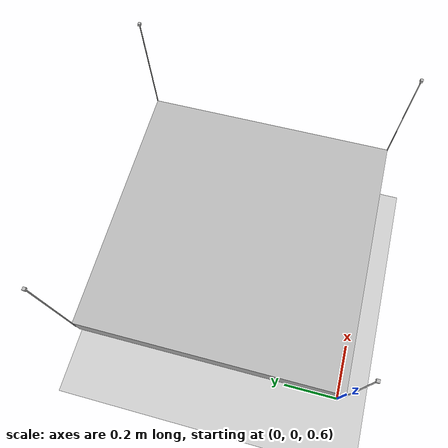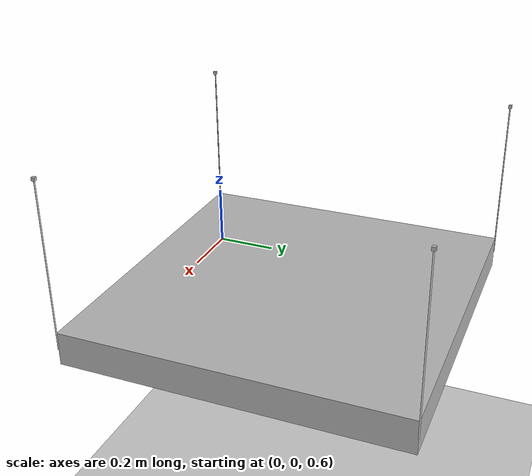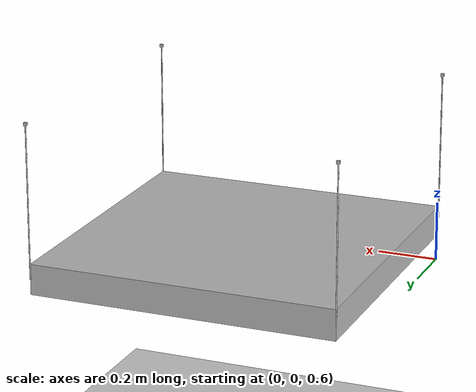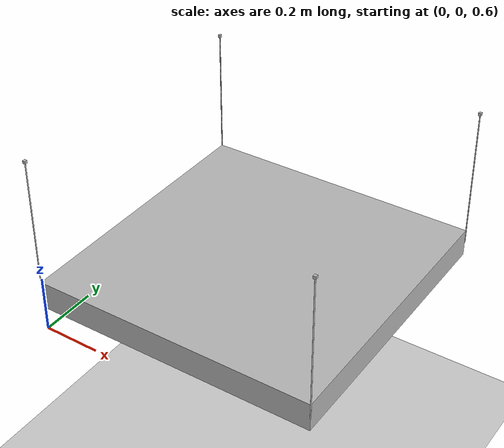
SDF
<sdf version="1.7">
 <world name="default">
  <light name="sun" type="directional">
   <pose>0 0 10 0 -0 0</pose>
   <diffuse>0.8 0.8 0.8 1</diffuse>
   <specular>0.2 0.2 0.2 1</specular>
   <attenuation>
    <range>1000</range>
    <constant>0.9</constant>
    <linear>0.01</linear>
    <quadratic>0.001</quadratic>
   </attenuation>
   <direction>-0.5 0.1 -0.9</direction>
   <spot><inner_angle>0</inner_angle><outer_angle>0</outer_angle><falloff>0</falloff></spot>
  </light>
  <model name="ground_plane">
   <static>1</static>
   <link name="link">
    <collision name="collision">
     <geometry><plane><normal>0 0 1</normal><size>100 100</size></plane></geometry>
     <surface>
      <contact><collide_bitmask>65535</collide_bitmask></contact>
      <friction><ode><mu>100</mu><mu2>50</mu2></ode></friction>
     </surface>
    </collision>
    <visual name="visual">
     <cast_shadows>0</cast_shadows>
     <geometry><plane><normal>0 0 1</normal><size>100 100</size></plane></geometry>
     <material>
      <script><uri>file://media/materials/scripts/gazebo.material</uri><name>Gazebo/Grey</name></script>
     </material>
    </visual>
   </link>
  </model>
  <gravity>0 0 -9.8</gravity>
  <magnetic_field>6e-06 2.3e-05 -4.2e-05</magnetic_field>
  <atmosphere type="adiabatic"/>
  <physics type="ode">
   <max_step_size>0.001</max_step_size>
   <real_time_factor>1</real_time_factor>
   <real_time_update_rate>1000</real_time_update_rate>
  </physics>
  <scene><ambient>0.4 0.4 0.4 1</ambient><background>0.7 0.7 0.7 1</background><shadows>1</shadows></scene>
  <spherical_coordinates>
   <surface_model>EARTH_WGS84</surface_model>
   <latitude_deg>0</latitude_deg>
   <longitude_deg>0</longitude_deg>
   <elevation>0</elevation>
   <heading_deg>0</heading_deg>
  </spherical_coordinates>
  <model name="robot">
   <link name="world_link">
    <inertial>
     <pose>-0 0 0.333333 0 -0 0</pose>
     <mass>0.009</mass>
     <inertia>
      <ixx>0.11025</ixx>
      <ixy>-5.22442e-36</ixy>
      <ixz>-7.22801e-20</ixz>
      <iyy>0.11025</iyy>
      <iyz>7.22801e-20</iyz>
      <izz>0.108</izz>
     </inertia>
    </inertial>
    <collision name="world_link_fixed_joint_lump__base_plate_collision">
     <geometry><box><size>1 1 0.1</size></box></geometry>
    </collision>
    <collision name="world_link_fixed_joint_lump__rod1_collision_1">
     <pose>0.5 0.5 0.25 0 -0 0</pose>
     <geometry><cylinder><length>0.5</length><radius>0.02</radius></cylinder></geometry>
    </collision>
    <collision name="world_link_fixed_joint_lump__dummy1_collision_2">
     <pose>0.5 0.5 0.5 0 -0 0</pose>
     <geometry><box><size>0.01 0.01 0.01</size></box></geometry>
    </collision>
    <collision name="world_link_fixed_joint_lump__rod2_collision_3">
     <pose>-0.5 0.5 0.25 0 -0 0</pose>
     <geometry><cylinder><length>0.5</length><radius>0.02</radius></cylinder></geometry>
    </collision>
    <collision name="world_link_fixed_joint_lump__dummy2_collision_4">
     <pose>-0.5 0.5 0.5 0 -0 0</pose>
     <geometry><box><size>0.01 0.01 0.01</size></box></geometry>
    </collision>
    <collision name="world_link_fixed_joint_lump__rod3_collision_5">
     <pose>-0.5 -0.5 0.25 0 -0 0</pose>
     <geometry><cylinder><length>0.5</length><radius>0.02</radius></cylinder></geometry>
    </collision>
    <collision name="world_link_fixed_joint_lump__dummy3_collision_6">
     <pose>-0.5 -0.5 0.5 0 -0 0</pose>
     <geometry><box><size>0.01 0.01 0.01</size></box></geometry>
    </collision>
    <collision name="world_link_fixed_joint_lump__rod4_collision_7">
     <pose>0.5 -0.5 0.25 0 -0 0</pose>
     <geometry><cylinder><length>0.5</length><radius>0.02</radius></cylinder></geometry>
    </collision>
    <collision name="world_link_fixed_joint_lump__dummy4_collision_8">
     <pose>0.5 -0.5 0.5 0 -0 0</pose>
     <geometry><box><size>0.01 0.01 0.01</size></box></geometry>
    </collision>
    <visual name="world_link_fixed_joint_lump__base_plate_visual">
     <geometry><box><size>1 1 0.1</size></box></geometry>
    </visual>
    <visual name="world_link_fixed_joint_lump__rod1_visual_1">
     <pose>0.5 0.5 0.25 0 -0 0</pose>
     <geometry><cylinder><length>0.5</length><radius>0.002</radius></cylinder></geometry>
    </visual>
    <visual name="world_link_fixed_joint_lump__dummy1_visual_2">
     <pose>0.5 0.5 0.5 0 -0 0</pose>
     <geometry><box><size>0.01 0.01 0.01</size></box></geometry>
    </visual>
    <visual name="world_link_fixed_joint_lump__rod2_visual_3">
     <pose>-0.5 0.5 0.25 0 -0 0</pose>
     <geometry><cylinder><length>0.5</length><radius>0.002</radius></cylinder></geometry>
    </visual>
    <visual name="world_link_fixed_joint_lump__dummy2_visual_4">
     <pose>-0.5 0.5 0.5 0 -0 0</pose>
     <geometry><box><size>0.01 0.01 0.01</size></box></geometry>
    </visual>
    <visual name="world_link_fixed_joint_lump__rod3_visual_5">
     <pose>-0.5 -0.5 0.25 0 -0 0</pose>
     <geometry><cylinder><length>0.5</length><radius>0.002</radius></cylinder></geometry>
    </visual>
    <visual name="world_link_fixed_joint_lump__dummy3_visual_6">
     <pose>-0.5 -0.5 0.5 0 -0 0</pose>
     <geometry><box><size>0.01 0.01 0.01</size></box></geometry>
    </visual>
    <visual name="world_link_fixed_joint_lump__rod4_visual_7">
     <pose>0.5 -0.5 0.25 0 -0 0</pose>
     <geometry><cylinder><length>0.5</length><radius>0.002</radius></cylinder></geometry>
    </visual>
    <visual name="world_link_fixed_joint_lump__dummy4_visual_8">
     <pose>0.5 -0.5 0.5 0 -0 0</pose>
     <geometry><box><size>0.01 0.01 0.01</size></box></geometry>
    </visual>
   </link>
   <static>0</static>
   <plugin name="GazeboPlugin" filename="home/gzmtsim/GazeboPlugin/export/lib/libGazeboCoSimPlugin.so">
    <portNumber>14581</portNumber>
    <robotNamespace>/</robotNamespace>
   </plugin>
   <pose>0.494244 0.49957 0.737346 -0.001069 -0.000137 0.003175</pose>
  </model>
 </world>
</sdf>
